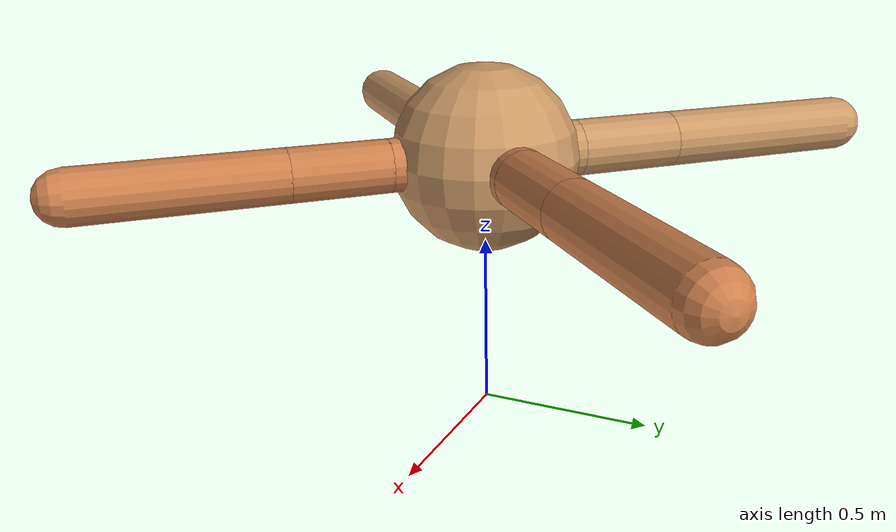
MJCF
<?xml version="1.0" ?>
<mujoco model="ant">

	<compiler angle="degree" coordinate="local" inertiafromgeom="true"/>

	<option integrator="RK4" timestep="0.01"/>

	<custom>

		<numeric data="0.0 0.0 0.55 1.0 0.0 0.0 0.0 0.0 1.0 0.0 -1.0 0.0 -1.0 0.0 1.0" name="init_qpos"/>

	</custom>

	<default>

		<joint armature="1" damping="1" limited="true"/>

		<geom conaffinity="0" condim="3" density="5.0" friction="1.5 0.1 0.1" margin="0.01" rgba="0.8 0.6 0.4 1"/>

	</default>

	<worldbody>

		<body name="torso" pos="0 0 0.75">

			<geom name="torso_geom" pos="0 0 0" size="0.26743777778048605" type="sphere"/>

			<!--joint armature="0" damping="0" limited="false" margin="0.01" name="root" pos="0 0 0" type="free"/-->

			<body name="front_left_leg" pos="0 0 0">

				<geom fromto="0 0 0 0.2 0.2 0" name="aux_1_geom" size="0.08348607954490954" type="capsule" rgba=".8 .5 .3 1"/>

				<body name="aux_1" pos="0.2 0.2 0">

					<joint axis="0 0 1" name="hip_1" pos="0.0 0.0 0.0" range="-40 40" type="hinge"/>

					<geom fromto="0 0 0 0.20541859069938995 0.20541859069938995 0" name="left_leg_geom" size="0.08348607954490954" type="capsule" rgba=".8 .5 .3 1"/>

					<body pos="0.20541859069938995 0.20541859069938995 0" name="front_left_foot">

						<joint axis="-1 1 0" name="ankle_1" pos="0.0 0.0 0.0" range="30 100" type="hinge"/>

						<geom fromto="0 0 0 0.4108371813987799 0.4108371813987799 0" name="left_ankle_geom" size="0.08348607954490954" type="capsule" rgba=".8 .5 .3 1"/>

					</body>

				</body>

			</body>

			<body name="front_right_leg" pos="0 0 0">

				<geom fromto="0 0 0 -0.2 0.2 0" name="aux_2_geom" size="0.0828951539428496" type="capsule"/>

				<body name="aux_2" pos="-0.2 0.2 0">

					<joint axis="0 0 1" name="hip_2" pos="0.0 0.0 0.0" range="-40 40" type="hinge"/>

					<geom fromto="0 0 0 -0.21694563847551562 0.21694563847551562 0" name="right_leg_geom" size="0.0828951539428496" type="capsule"/>

					<body pos="-0.21694563847551562 0.21694563847551562 0" name="front_right_foot">

						<joint axis="1 1 0" name="ankle_2" pos="0.0 0.0 0.0" range="-100 -30" type="hinge"/>

						<geom fromto="0 0 0 -0.43389127695103125 0.43389127695103125 0" name="right_ankle_geom" size="0.0828951539428496" type="capsule"/>

					</body>

				</body>

			</body>

			<body name="left_back_leg" pos="0 0 0">

				<geom fromto="0 0 0 -0.2 -0.2 0" name="aux_3_geom" size="0.07915999684058865" type="capsule"/>

				<body name="aux_3" pos="-0.2 -0.2 0">

					<joint axis="0 0 1" name="hip_3" pos="0.0 0.0 0.0" range="-40 40" type="hinge"/>

					<geom fromto="0 0 0 -0.18906115008015772 -0.18906115008015772 0" name="back_leg_geom" size="0.07915999684058865" type="capsule"/>

					<body pos="-0.18906115008015772 -0.18906115008015772 0" name="left_back_foot">

						<joint axis="-1 1 0" name="ankle_3" pos="0.0 0.0 0.0" range="-100 -30" type="hinge"/>

						<geom fromto="0 0 0 -0.37812230016031545 -0.37812230016031545 0" name="third_ankle_geom" size="0.07915999684058865" type="capsule"/>

					</body>

				</body>

			</body>

			<body name="right_back_leg" pos="0 0 0">

				<geom fromto="0 0 0 0.2 -0.2 0" name="aux_4_geom" size="0.0750644237285297" type="capsule" rgba=".8 .5 .3 1"/>

				<body name="aux_4" pos="0.2 -0.2 0">

					<joint axis="0 0 1" name="hip_4" pos="0.0 0.0 0.0" range="-40 40" type="hinge"/>

					<geom fromto="0 0 0 0.19338559003771957 -0.19338559003771957 0" name="rightback_leg_geom" size="0.0750644237285297" type="capsule" rgba=".8 .5 .3 1"/>

					<body pos="0.19338559003771957 -0.19338559003771957 0" name="right_back_foot">

						<joint axis="1 1 0" name="ankle_4" pos="0.0 0.0 0.0" range="30 100" type="hinge"/>

						<geom fromto="0 0 0 0.38677118007543915 -0.38677118007543915 0" name="fourth_ankle_geom" size="0.0750644237285297" type="capsule" rgba=".8 .5 .3 1"/>

					</body>

				</body>

			</body>

		</body>

	</worldbody>

	<actuator>

		<motor ctrllimited="true" ctrlrange="-1.0 1.0" joint="hip_4" gear="150"/>

		<motor ctrllimited="true" ctrlrange="-1.0 1.0" joint="ankle_4" gear="150"/>

		<motor ctrllimited="true" ctrlrange="-1.0 1.0" joint="hip_1" gear="150"/>

		<motor ctrllimited="true" ctrlrange="-1.0 1.0" joint="ankle_1" gear="150"/>

		<motor ctrllimited="true" ctrlrange="-1.0 1.0" joint="hip_2" gear="150"/>

		<motor ctrllimited="true" ctrlrange="-1.0 1.0" joint="ankle_2" gear="150"/>

		<motor ctrllimited="true" ctrlrange="-1.0 1.0" joint="hip_3" gear="150"/>

		<motor ctrllimited="true" ctrlrange="-1.0 1.0" joint="ankle_3" gear="150"/>

	</actuator>

</mujoco>
